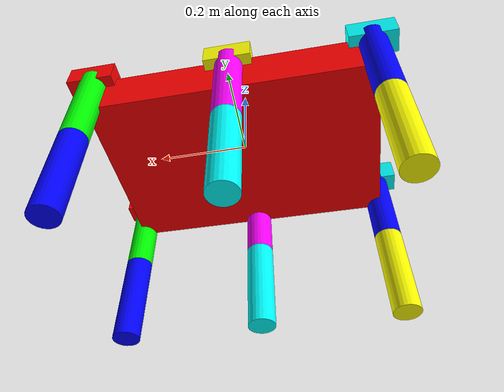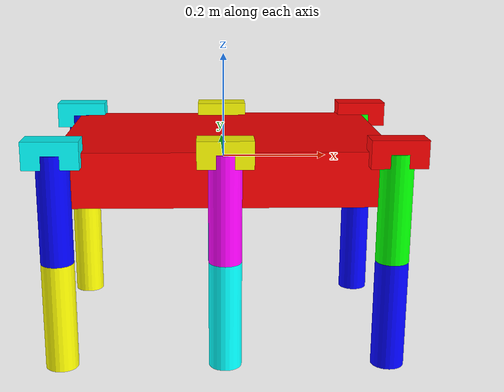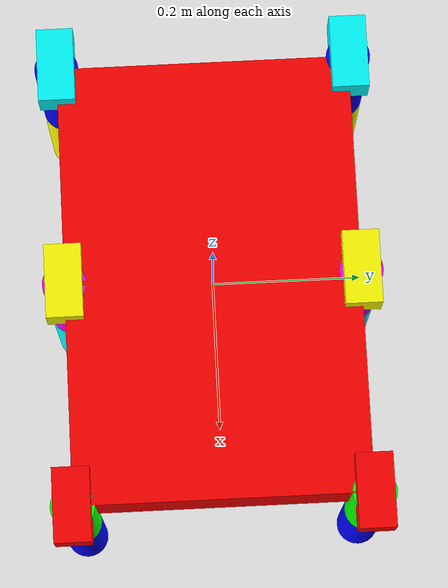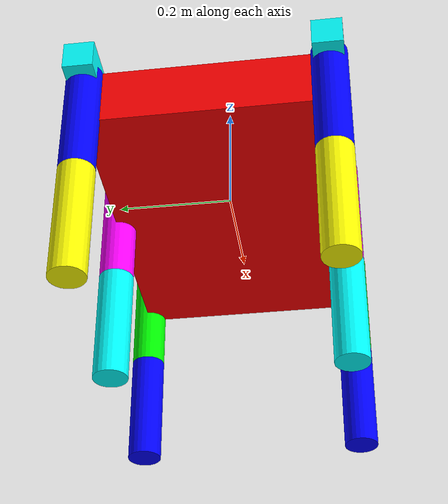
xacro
<?xml version="1.0"?>
<robot name="hexapod" xmlns:xacro="http://www.ros.org/wiki/xacro">

  <!-- Base Link -->
  <link name="base_link">
    <visual>
      <geometry>
        <box size="0.6 0.4 0.1"/>
      </geometry>
      <material name="red">
        <color rgba="1 0 0 1"/>
      </material>
    </visual>
    <collision>
      <geometry>
        <box size="0.6 0.4 0.1"/>
      </geometry>
    </collision>
    <inertial>
      <mass value="5.0"/>
      <inertia ixx="0.2" ixy="0.0" ixz="0.0" iyy="0.2" iyz="0.0" izz="0.2"/>
    </inertial>
  </link>

  <!-- Macro for a single leg -->
<xacro:macro name="leg" params="leg_name x_offset y_offset hip_color thigh_color shin_color">
  <!-- Trochanter (Link1) -->
  <link name="${leg_name}_trochanter">
    <visual>
      <geometry>
        <box size="0.1 0.05 0.05"/>
      </geometry>
      <material name="hip_color">
        <color rgba="${hip_color} 1"/>
      </material>
    </visual>
    <collision>
      <geometry>
        <box size="0.1 0.05 0.05"/>
      </geometry>
    </collision>
    <inertial>
      <mass value="0.2"/>
      <inertia ixx="0.01" ixy="0.0" ixz="0.0" iyy="0.01" iyz="0.0" izz="0.01"/>
    </inertial>
  </link>

  <!-- Hip Joint (q₁) -->
  <joint name="${leg_name}_hip_joint" type="revolute">
    <parent link="base_link"/>
    <child link="${leg_name}_trochanter"/>
    <origin xyz="${x_offset} ${y_offset} 0.05" rpy="0 0 0"/>
    <axis xyz="0 0 1"/>
    <limit effort="5.0" lower="-1.57" upper="1.57" velocity="1.0"/>
  </joint>

  <!-- Femur (Link2) -->
  <link name="${leg_name}_femur">
    <visual>
      <geometry>
        <cylinder length="0.2" radius="0.03"/>
      </geometry>
      <material name="thigh_color">
        <color rgba="${thigh_color} 1"/>
      </material>
    </visual>
    <collision>
      <geometry>
        <cylinder length="0.2" radius="0.03"/>
      </geometry>
    </collision>
    <inertial>
      <mass value="0.2"/>
      <inertia ixx="0.01" ixy="0.0" ixz="0.0" iyy="0.01" iyz="0.0" izz="0.01"/>
    </inertial>
  </link>

  <!-- Knee Joint (q₂) -->
  <joint name="${leg_name}_knee_joint" type="revolute">
    <parent link="${leg_name}_trochanter"/>
    <child link="${leg_name}_femur"/>
    <origin xyz="0.0 0.0 -0.1" rpy="0 0 0"/>
    <axis xyz="0 1 0"/>
    <limit effort="5.0" lower="-2.0" upper="2.0" velocity="1.0"/>
  </joint>

  <!-- Tibia (Link3) -->
  <link name="${leg_name}_tibia">
    <visual>
      <geometry>
        <cylinder length="0.2" radius="0.03"/>
      </geometry>
      <material name="shin_color">
        <color rgba="${shin_color} 1"/>
      </material>
    </visual>
    <collision>
      <geometry>
        <cylinder length="0.2" radius="0.03"/>
      </geometry>
    </collision>
    <inertial>
      <mass value="0.2"/>
      <inertia ixx="0.01" ixy="0.0" ixz="0.0" iyy="0.01" iyz="0.0" izz="0.01"/>
    </inertial>
  </link>

  <!-- Ankle Joint (q₃) -->
  <joint name="${leg_name}_ankle_joint" type="revolute">
    <parent link="${leg_name}_femur"/>
    <child link="${leg_name}_tibia"/>
    <origin xyz="0.0 0.0 -0.2" rpy="0 0 0"/>
    <axis xyz="0 1 0"/>
    <limit effort="5.0" lower="-2.0" upper="2.0" velocity="1.0"/>
  </joint>
</xacro:macro>

  <!-- Define the six legs -->
  <xacro:leg leg_name="front_left" x_offset="0.3" y_offset="0.2" hip_color="1 0 0" thigh_color="0 1 0" shin_color="0 0 1"/>
  <xacro:leg leg_name="front_right" x_offset="0.3" y_offset="-0.2" hip_color="1 0 0" thigh_color="0 1 0" shin_color="0 0 1"/>
  <xacro:leg leg_name="middle_left" x_offset="0.0" y_offset="0.2" hip_color="1 1 0" thigh_color="1 0 1" shin_color="0 1 1"/>
  <xacro:leg leg_name="middle_right" x_offset="0.0" y_offset="-0.2" hip_color="1 1 0" thigh_color="1 0 1" shin_color="0 1 1"/>
  <xacro:leg leg_name="back_left" x_offset="-0.3" y_offset="0.2" hip_color="0 1 1" thigh_color="0 0 1" shin_color="1 1 0"/>
  <xacro:leg leg_name="back_right" x_offset="-0.3" y_offset="-0.2" hip_color="0 1 1" thigh_color="0 0 1" shin_color="1 1 0"/>

</robot>
